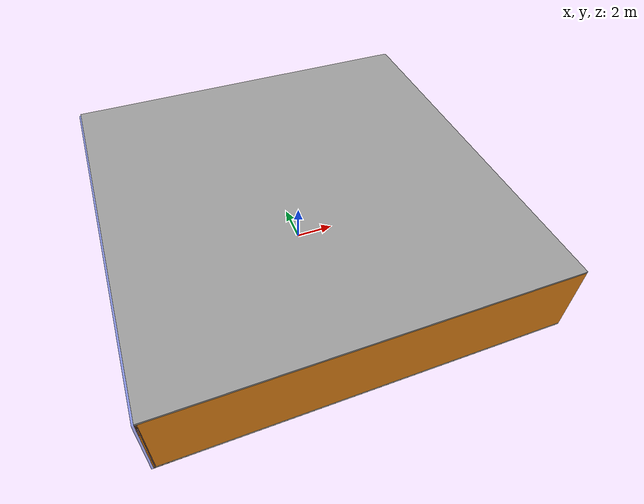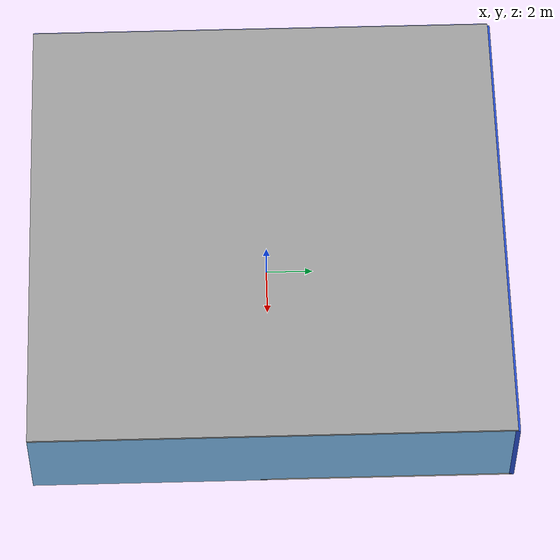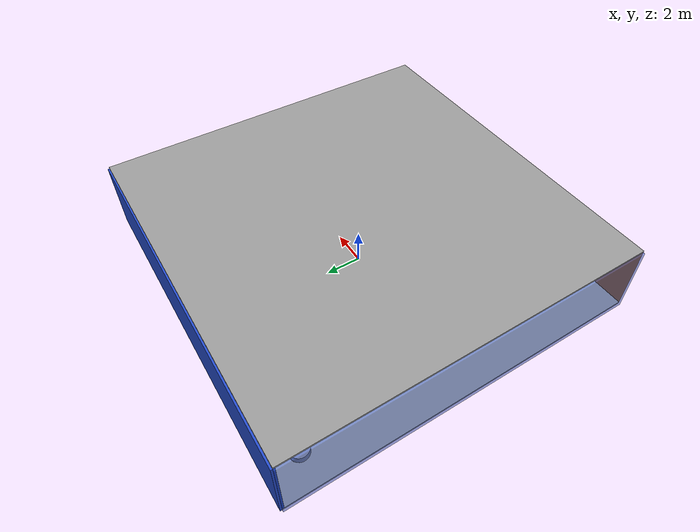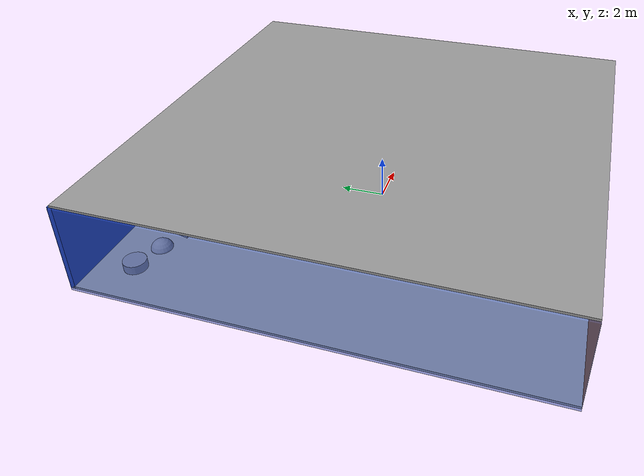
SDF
<sdf version="1.4">
 <world name="default">
  <physics type="ode">
   <max_step_size>0.001</max_step_size>
   <real_time_factor>1</real_time_factor>
   <real_time_update_rate>1000</real_time_update_rate>
   <gravity>0 0 -9.8</gravity>
  </physics>
  <scene><ambient>0.4 0.4 0.4 1</ambient><background>0.7 0.7 0.7 1</background><shadows>1</shadows></scene>
  <model name="Surrounding">
   <static>1</static>
   <link name="Ceiling">
    <collision name="Ceiling_Collision"><geometry><box><size>20 20 0.1</size></box></geometry></collision>
    <visual name="Ceiling_Visual">
     <geometry><box><size>20 20 0.1</size></box></geometry>
     <material>
      <script><uri>file://media/materials/scripts/gazebo.material</uri><name>Gazebo/Grey</name></script>
     </material>
    </visual>
    <pose>0 0 4.05 0 0 0</pose>
   </link>
   <link name="Wall_South">
    <collision name="Wall_South_Collision">
     <geometry><box><size>20 0 4</size></box></geometry>
     <pose>0 0 2 0 -0 0</pose>
    </collision>
    <visual name="Wall_South_Visual">
     <pose>0 0 2 0 -0 0</pose>
     <geometry><box><size>20 0 4</size></box></geometry>
     <material>
      <script><uri>file://media/materials/scripts/gazebo.material</uri><name>Gazebo/Orange</name></script>
     </material>
    </visual>
    <velocity_decay><linear>0</linear><angular>0</angular></velocity_decay>
    <pose>0 -10 0 0 -0 0</pose>
   </link>
   <link name="Wall_East">
    <collision name="Wall_21_Collision">
     <geometry><box><size>20 0 4</size></box></geometry>
     <pose>0 0 2 0 -0 0</pose>
    </collision>
    <visual name="Wall_21_Visual">
     <pose>0 0 2 0 -0 0</pose>
     <geometry><box><size>20 0 4</size></box></geometry>
     <material>
      <script><uri>file://media/materials/scripts/gazebo.material</uri><name>Gazebo/SkyBlue</name></script>
     </material>
    </visual>
    <velocity_decay><linear>0</linear><angular>0</angular></velocity_decay>
    <pose>10 0 0 0 -0 1.5708</pose>
   </link>
   <link name="Wall_North">
    <collision name="Wall_22_Collision">
     <geometry><box><size>20 0.2 4</size></box></geometry>
     <pose>0 0 2 0 -0 0</pose>
    </collision>
    <visual name="Wall_22_Visual">
     <pose>0 0 2 0 -0 0</pose>
     <geometry><box><size>20 0.2 4</size></box></geometry>
     <material>
      <script><uri>file://media/materials/scripts/gazebo.material</uri><name>Gazebo/BlueGlow</name></script>
     </material>
    </visual>
    <velocity_decay><linear>0</linear><angular>0</angular></velocity_decay>
    <pose>0 10 0 0 -0 0</pose>
   </link>
   <link name="Wall_West">
    <collision name="Wall_23_Collision">
     <geometry><box><size>20 0.2 4</size></box></geometry>
     <pose>0 0 2 0 -0 0</pose>
    </collision>
    <visual name="Wall_23_Visual">
     <pose>0 0 2 0 -0 0</pose>
     <geometry><box><size>20 0.2 4</size></box></geometry>
     <material>
      <script><uri>file://media/materials/scripts/gazebo.material</uri><name>Gazebo/BlueTransparent</name></script>
     </material>
    </visual>
    <velocity_decay><linear>0</linear><angular>0</angular></velocity_decay>
    <pose>-10 0 0 0 0 -1.5708</pose>
   </link>
   <link name="Ground_link">
    <collision name="collision">
     <pose>0 0 .05 0 -0 0</pose>
     <geometry><box><size>20 20 0.1</size></box></geometry>
    </collision>
    <visual name="visual">
     <pose>0 0 .05 0 -0 0</pose>
     <geometry><box><size>20 20 0.1</size></box></geometry>
     <material>
      <script><uri>file://media/materials/scripts/gazebo.material</uri><name>Gazebo/PaintedWall</name></script>
     </material>
    </visual>
   </link>
   <static>1</static>
  </model>
  <spherical_coordinates>
   <surface_model>EARTH_WGS84</surface_model>
   <latitude_deg>0</latitude_deg>
   <longitude_deg>0</longitude_deg>
   <elevation>0</elevation>
   <heading_deg>0</heading_deg>
  </spherical_coordinates>
  <light name="lightball_0" type="diffuse">
   <diffuse>0.8 0.8 0.8 1</diffuse>
   <specular>0.2 0.2 0.2 1</specular>
   <attenuation>
    <range>100</range>
    <constant>0.7</constant>
    <linear>0.01</linear>
    <quadratic>0.001</quadratic>
   </attenuation>
   <direction>-0.5 0.1 -0.9</direction>
   <pose>9.12321087013 9.01122889024 2.32828324981 0 0 0</pose>
  </light>
  <light name="lightball_1" type="diffuse">
   <diffuse>0.8 0.8 0.8 1</diffuse>
   <specular>0.2 0.2 0.2 1</specular>
   <attenuation>
    <range>100</range>
    <constant>0.7</constant>
    <linear>0.01</linear>
    <quadratic>0.001</quadratic>
   </attenuation>
   <direction>-0.5 0.1 -0.9</direction>
   <pose>2.99535591178 -4.77343600369 1.99116452215 0 0 0</pose>
  </light>
  <light name="lightball_2" type="diffuse">
   <diffuse>0.8 0.8 0.8 1</diffuse>
   <specular>0.2 0.2 0.2 1</specular>
   <attenuation>
    <range>100</range>
    <constant>0.7</constant>
    <linear>0.01</linear>
    <quadratic>0.001</quadratic>
   </attenuation>
   <direction>-0.5 0.1 -0.9</direction>
   <pose>7.54630827179 -9.90934786523 0.819634624356 0 0 0</pose>
  </light>
  <light name="lightball_3" type="diffuse">
   <diffuse>0.8 0.8 0.8 1</diffuse>
   <specular>0.2 0.2 0.2 1</specular>
   <attenuation>
    <range>100</range>
    <constant>0.7</constant>
    <linear>0.01</linear>
    <quadratic>0.001</quadratic>
   </attenuation>
   <direction>-0.5 0.1 -0.9</direction>
   <pose>5.44207241832 -8.01054902837 2.04833481576 0 0 0</pose>
  </light>
  <light name="lightball_4" type="diffuse">
   <diffuse>0.8 0.8 0.8 1</diffuse>
   <specular>0.2 0.2 0.2 1</specular>
   <attenuation>
    <range>100</range>
    <constant>0.7</constant>
    <linear>0.01</linear>
    <quadratic>0.001</quadratic>
   </attenuation>
   <direction>-0.5 0.1 -0.9</direction>
   <pose>-4.6471140926 -9.76654947081 0.908978463127 0 0 0</pose>
  </light>
  <light name="lightball_5" type="diffuse">
   <diffuse>0.8 0.8 0.8 1</diffuse>
   <specular>0.2 0.2 0.2 1</specular>
   <attenuation>
    <range>100</range>
    <constant>0.7</constant>
    <linear>0.01</linear>
    <quadratic>0.001</quadratic>
   </attenuation>
   <direction>-0.5 0.1 -0.9</direction>
   <pose>7.15901648603 -8.48654265991 2.57618242461 0 0 0</pose>
  </light>
  <light name="lightball_6" type="diffuse">
   <diffuse>0.8 0.8 0.8 1</diffuse>
   <specular>0.2 0.2 0.2 1</specular>
   <attenuation>
    <range>100</range>
    <constant>0.7</constant>
    <linear>0.01</linear>
    <quadratic>0.001</quadratic>
   </attenuation>
   <direction>-0.5 0.1 -0.9</direction>
   <pose>-4.12676702269 -9.09753813734 2.37464675236 0 0 0</pose>
  </light>
  <light name="lightball_7" type="diffuse">
   <diffuse>0.8 0.8 0.8 1</diffuse>
   <specular>0.2 0.2 0.2 1</specular>
   <attenuation>
    <range>100</range>
    <constant>0.7</constant>
    <linear>0.01</linear>
    <quadratic>0.001</quadratic>
   </attenuation>
   <direction>-0.5 0.1 -0.9</direction>
   <pose>3.80223602689 -3.47972625174 2.10962379014 0 0 0</pose>
  </light>
  <light name="lightball_8" type="diffuse">
   <diffuse>0.8 0.8 0.8 1</diffuse>
   <specular>0.2 0.2 0.2 1</specular>
   <attenuation>
    <range>100</range>
    <constant>0.7</constant>
    <linear>0.01</linear>
    <quadratic>0.001</quadratic>
   </attenuation>
   <direction>-0.5 0.1 -0.9</direction>
   <pose>5.84442258457 9.92248282738 1.62687232673 0 0 0</pose>
  </light>
  <light name="lightball_9" type="diffuse">
   <diffuse>0.8 0.8 0.8 1</diffuse>
   <specular>0.2 0.2 0.2 1</specular>
   <attenuation>
    <range>100</range>
    <constant>0.7</constant>
    <linear>0.01</linear>
    <quadratic>0.001</quadratic>
   </attenuation>
   <direction>-0.5 0.1 -0.9</direction>
   <pose>5.14282222742 1.88107810968 2.58348040316 0 0 0</pose>
  </light>
  <light name="lightball_10" type="diffuse">
   <diffuse>0.8 0.8 0.8 1</diffuse>
   <specular>0.2 0.2 0.2 1</specular>
   <attenuation>
    <range>100</range>
    <constant>0.7</constant>
    <linear>0.01</linear>
    <quadratic>0.001</quadratic>
   </attenuation>
   <direction>-0.5 0.1 -0.9</direction>
   <pose>-8.22794304988 4.1558144846 2.35930576289 0 0 0</pose>
  </light>
  <include>
   <uri>model://textured_shapes</uri>
   <pose>-6.76412130281 7.90273199202 0 0 0 1.35111423627</pose>
  </include>
  <include>
   <uri>model://construction_cone</uri>
   <pose>-4.53610511396 7.4381127546 0 0 0 1.76412368023</pose>
  </include>
  <include><uri>model://table</uri><pose>-1.89167753271 -4.72819048443 0 0 0 1.7856219865</pose></include>
  <include>
   <uri>model://textured_shapes</uri>
   <pose>0.954423248123 -1.39913489512 0 0 0 0.666876816635</pose>
  </include>
  <include><uri>model://cabinet</uri><pose>1.12519450302 1.97707495656 0 0 0 2.16831656551</pose></include>
  <include><uri>model://cabinet</uri><pose>0.777539934921 3.76083635334 0 0 0 1.20694070345</pose></include>
  <include><uri>model://table</uri><pose>2.28365855567 7.02035957676 0 0 0 2.87419559427</pose></include>
  <include>
   <uri>model://construction_cone</uri>
   <pose>4.04223736223 -4.19925916445 0 0 0 2.59114048824</pose>
  </include>
  <include><uri>model://cabinet</uri><pose>4.49550397799 -1.64740529593 0 0 0 0.294170839005</pose></include>
  <include>
   <uri>model://robocup_3Dsim_goal</uri>
   <pose>4.65201793415 2.28568141625 0 0 0 2.15629506159</pose>
  </include>
  <include>
   <uri>model://textured_shapes</uri>
   <pose>6.70269472702 -1.39444231814 0 0 0 1.81389034218</pose>
  </include>
 </world>
</sdf>

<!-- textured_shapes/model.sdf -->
<sdf version="1.6">
  <model name="textured_shapes">
    <pose>0 0 0.5 0 0 0</pose>
    <link name="box">
      <pose>0 -1.5 0 0 0 0</pose>
      <collision name="collision">
        <geometry>
          <box>
            <size>1 1 1</size>
          </box>
        </geometry>
      </collision>
      <visual name="visual">
        <geometry>
          <box>
            <size>1 1 1</size>
          </box>
        </geometry>
        <material>
          <script>
            <uri>model://../model_source/models/textured_shapes/materials/scripts</uri>
            <uri>model://../model_source/models/textured_shapes/materials/textures</uri>
            <name>TexturedShape/Squares</name>
          </script>
        </material>
      </visual>
    </link>
    <link name="sphere">
      <collision name="collision">
        <geometry>
          <sphere>
            <radius>0.5</radius>
          </sphere>
        </geometry>
      </collision>
      <visual name="visual">
        <geometry>
          <sphere>
            <radius>0.5</radius>
          </sphere>
        </geometry>
        <material>
          <script>
            <uri>model://../model_source/models/textured_shapes/materials/scripts</uri>
            <uri>model://../model_source/models/textured_shapes/materials/textures</uri>
            <name>TexturedShape/Squares</name>
          </script>
        </material>
      </visual>
    </link>
    <link name="cylinder">
      <pose>0 1.5 0 0 0 0</pose>
      <collision name="collision">
        <geometry>
          <cylinder>
            <radius>0.5</radius>
            <length>1</length>
          </cylinder>
        </geometry>
      </collision>
      <visual name="visual">
        <geometry>
          <cylinder>
            <radius>0.5</radius>
            <length>1</length>
          </cylinder>
        </geometry>
        <material>
          <script>
            <uri>model://../model_source/models/textured_shapes/materials/scripts</uri>
            <uri>model://../model_source/models/textured_shapes/materials/textures</uri>
            <name>TexturedShape/Squares</name>
          </script>
        </material>
      </visual>
    </link>
  </model>
</sdf>

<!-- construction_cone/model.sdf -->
<sdf version="1.5">
  <model name="Construction Cone">
    <link name="link">
      <collision name="collision">
        <geometry>
          <mesh>
            <scale>10 10 10</scale>
            <uri>file://isr-testbed/construction_cone/meshes/construction_cone.dae</uri>
          </mesh>
        </geometry>
      </collision>
      <visual name="visual">
        <geometry>
          <mesh>
            <scale>10 10 10</scale>
            <uri>file://isr-testbed/construction_cone/meshes/construction_cone.dae</uri>
          </mesh>
        </geometry>
      </visual>
    </link>
  </model>
</sdf>

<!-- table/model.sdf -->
<sdf version="1.5">
  <model name="table">
    <static>true</static>
    <link name="link">
      <collision name="surface">
        <pose>0 0 1.0 0 0 0</pose>
        <geometry>
          <box>
            <size>1.5 0.8 0.03</size>
          </box>
        </geometry>
        <surface>
          <friction>
            <ode>
              <mu>0.6</mu>
              <mu2>0.6</mu2>
            </ode>
          </friction>
        </surface>
      </collision>
      <visual name="visual1">
        <pose>0 0 1.0 0 0 0</pose>
        <geometry>
          <box>
            <size>1.5 0.8 0.03</size>
          </box>
        </geometry>
        <material>
          <script>
            <uri>model://media/materials/scripts/gazebo.material</uri>
            <name>Gazebo/Wood</name>
          </script>
        </material>
      </visual>
      <collision name="front_left_leg">
        <pose>0.68 0.38 0.5 0 0 0</pose>
        <geometry>
          <cylinder>
            <radius>0.02</radius>
            <length>1.0</length>
          </cylinder>
        </geometry>
      </collision>
      <visual name="front_left_leg">
        <pose>0.68 0.38 0.5 0 0 0</pose>
        <geometry>
          <cylinder>
            <radius>0.02</radius>
            <length>1.0</length>
          </cylinder>
        </geometry>
        <material>
          <script>
            <uri>model://media/materials/scripts/gazebo.material</uri>
            <name>Gazebo/Grey</name>
          </script>
        </material>
      </visual>
      <collision name="front_right_leg">
        <pose>0.68 -0.38 0.5 0 0 0</pose>
        <geometry>
          <cylinder>
            <radius>0.02</radius>
            <length>1.0</length>
          </cylinder>
        </geometry>
      </collision>
      <visual name="front_right_leg">
        <pose>0.68 -0.38 0.5 0 0 0</pose>
        <geometry>
          <cylinder>
            <radius>0.02</radius>
            <length>1.0</length>
          </cylinder>
        </geometry>
        <material>
          <script>
            <uri>model://media/materials/scripts/gazebo.material</uri>
            <name>Gazebo/Grey</name>
          </script>
        </material>
      </visual>
      <collision name="back_right_leg">
        <pose>-0.68 -0.38 0.5 0 0 0</pose>
        <geometry>
          <cylinder>
            <radius>0.02</radius>
            <length>1.0</length>
          </cylinder>
        </geometry>
      </collision>
      <visual name="back_right_leg">
        <pose>-0.68 -0.38 0.5 0 0 0</pose>
        <geometry>
          <cylinder>
            <radius>0.02</radius>
            <length>1.0</length>
          </cylinder>
        </geometry>
        <material>
          <script>
            <uri>model://media/materials/scripts/gazebo.material</uri>
            <name>Gazebo/Grey</name>
          </script>
        </material>
      </visual>
      <collision name="back_left_leg">
        <pose>-0.68 0.38 0.5 0 0 0</pose>
        <geometry>
          <cylinder>
            <radius>0.02</radius>
            <length>1.0</length>
          </cylinder>
        </geometry>
      </collision>
      <visual name="back_left_leg">
        <pose>-0.68 0.38 0.5 0 0 0</pose>
        <geometry>
          <cylinder>
            <radius>0.02</radius>
            <length>1.0</length>
          </cylinder>
        </geometry>
        <material>
          <script>
            <uri>model://media/materials/scripts/gazebo.material</uri>
            <name>Gazebo/Grey</name>
          </script>
        </material>
      </visual>
    </link>
  </model>
</sdf>

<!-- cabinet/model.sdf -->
<sdf version="1.5">
  <model name="cabinet">
    <static>true</static>
    <link name="cabinet_bottom_plate">
      <inertial>
        <pose>0 0 -1 0 0 0</pose>
        <inertia>
          <ixx>2.050000</ixx>
          <ixy>0</ixy>
          <ixz>0</ixz>
          <iyy>2.050000</iyy>
          <iyz>0</iyz>
          <izz>2.050000</izz>
        </inertia>
        <mass>25.000000</mass>
      </inertial>
      <collision name="cabinet_bottom_plate_geom">
        <pose>0 0 0.010000 0 0 0</pose>
        <geometry>
          <box>
            <size>0.450000 0.450000 0.020000</size>
          </box>
        </geometry>
      </collision>
      <visual name="cabinet_bottom_plate_geom_visual">
        <pose>0 0 0.010000 0 0 0</pose>
        <geometry>
          <box>
            <size>0.450000 0.450000 0.020000</size>
          </box>
        </geometry>
        <material>
          <script>
            <uri>model://media/materials/scripts/gazebo.material</uri>
            <name>Gazebo/Wood</name>
          </script>
        </material>
      </visual>
      <collision name="cabinet_bottom_plate_geom_cabinet_back_plate">
        <pose>0.235000 0 0.510000 0 0 0</pose>
        <geometry>
          <box>
            <size>0.020000 0.450000 1.020000</size>
          </box>
        </geometry>
      </collision>
      <visual name="cabinet_bottom_plate_geom_cabinet_back_plate_visual">
        <pose>0.235000 0 0.510000 0 0 0</pose>
        <geometry>
          <box>
            <size>0.020000 0.450000 1.020000</size>
          </box>
        </geometry>
        <material>
          <script>
            <uri>model://media/materials/scripts/gazebo.material</uri>
            <name>Gazebo/Wood</name>
          </script>
        </material>
      </visual>
      <collision name="cabinet_bottom_plate_geom_cabinet_left_plate">
        <pose>0 0.235000 0.510000 0 0 0</pose>
        <geometry>
          <box>
            <size>0.450000 0.020000 1.020000</size>
          </box>
        </geometry>
      </collision>
      <visual name="cabinet_bottom_plate_geom_cabinet_left_plate_visual">
        <pose>0 0.235000 0.510000 0 0 0</pose>
        <geometry>
          <box>
            <size>0.450000 0.020000 1.020000</size>
          </box>
        </geometry>
        <material>
          <script>
            <uri>model://media/materials/scripts/gazebo.material</uri>
            <name>Gazebo/Wood</name>
          </script>
        </material>
      </visual>
      <collision name="cabinet_bottom_plate_geom_cabinet_middle_plate">
        <pose>0 0 0.510000 0 0 0</pose>
        <geometry>
          <box>
            <size>0.450000 0.450000 0.020000</size>
          </box>
        </geometry>
      </collision>
      <visual name="cabinet_bottom_plate_geom_cabinet_middle_plate_visual">
        <pose>0 0 0.510000 0 0 0</pose>
        <geometry>
          <box>
            <size>0.450000 0.450000 0.020000</size>
          </box>
        </geometry>
        <material>
          <script>
            <uri>model://media/materials/scripts/gazebo.material</uri>
            <name>Gazebo/Wood</name>
          </script>
        </material>
      </visual>
      <collision name="cabinet_bottom_plate_geom_cabinet_right_plate">
        <pose>0 -0.235000 0.510000 0 0 0</pose>
        <geometry>
          <box>
            <size>0.450000 0.020000 1.020000</size>
          </box>
        </geometry>
      </collision>
      <visual name="cabinet_bottom_plate_geom_cabinet_right_plate_visual">
        <pose>0 -0.235000 0.510000 0 0 0</pose>
        <geometry>
          <box>
            <size>0.450000 0.020000 1.020000</size>
          </box>
        </geometry>
        <material>
          <script>
            <uri>model://media/materials/scripts/gazebo.material</uri>
            <name>Gazebo/Wood</name>
          </script>
        </material>
      </visual>
      <collision name="cabinet_bottom_plate_geom_cabinet_top_plate">
        <pose>0 0 1.010000 0 0 0</pose>
        <geometry>
          <box>
            <size>0.450000 0.450000 0.020000</size>
          </box>
        </geometry>
      </collision>
      <visual name="cabinet_bottom_plate_geom_cabinet_top_plate_visual">
        <pose>0 0 1.010000 0 0 0</pose>
        <geometry>
          <box>
            <size>0.450000 0.450000 0.020000</size>
          </box>
        </geometry>
        <material>
          <script>
            <uri>model://media/materials/scripts/gazebo.material</uri>
            <name>Gazebo/Wood</name>
          </script>
        </material>
      </visual>
    </link>
  </model>
</sdf>

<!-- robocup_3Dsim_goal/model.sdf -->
<sdf version="1.5">
  <model name="robocup_3d_goal">
    <static>true</static>
    <link name="left_post">
      <pose>0 1.05 0.45 0 0 0</pose>
      <collision name="collision">
        <geometry>
          <cylinder>
            <radius>0.05</radius>
            <length>0.9</length>
          </cylinder>
        </geometry>
      </collision>
      <visual name="visual">
        <geometry>
          <cylinder>
            <radius>0.05</radius>
            <length>0.9</length>
          </cylinder>
        </geometry>
        <material>
          <script>
            <uri>file://media/materials/scripts/gazebo.material</uri>
            <name>Gazebo/ZincYellow</name>
          </script>
        </material>
      </visual>
    </link>
    <link name="left_support_horiz_lower">
      <pose>0.30 1.05 0.01 0 0 0</pose>
      <collision name="collision">
        <geometry>
          <box>
            <size>0.50 0.02 0.02</size>
          </box>
        </geometry>
      </collision>
      <visual name="visual">
        <geometry>
          <box>
            <size>0.50 0.02 0.02</size>
          </box>
        </geometry>
        <material>
          <script>
            <uri>file://media/materials/scripts/gazebo.material</uri>
            <name>Gazebo/White</name>
          </script>
        </material>
      </visual>
    </link>
    <link name="left_support_horiz_upper">
      <pose>0.30 1.05 0.79 0 0 0</pose>
      <collision name="collision">
        <geometry>
          <box>
            <size>0.50 0.02 0.02</size>
          </box>
        </geometry>
      </collision>
      <visual name="visual">
        <geometry>
          <box>
            <size>0.50 0.02 0.02</size>
          </box>
        </geometry>
        <material>
          <script>
            <uri>file://media/materials/scripts/gazebo.material</uri>
            <name>Gazebo/White</name>
          </script>
        </material>
      </visual>
    </link>
    <link name="left_support_vertical">
      <pose>0.56 1.05 0.4 0 1.5708 0</pose>
      <collision name="collision">
        <geometry>
          <box>
            <size>0.80 0.02 0.02</size>
          </box>
        </geometry>
      </collision>
      <visual name="visual">
        <geometry>
          <box>
            <size>0.80 0.02 0.02</size>
          </box>
        </geometry>
        <material>
          <script>
            <uri>file://media/materials/scripts/gazebo.material</uri>
            <name>Gazebo/White</name>
          </script>
        </material>
      </visual>
    </link>
    <link name="right_support_horiz_lower">
      <pose>0.30 -1.05 0.01 0 0 0</pose>
      <collision name="collision">
        <geometry>
          <box>
            <size>0.50 0.02 0.02</size>
          </box>
        </geometry>
      </collision>
      <visual name="visual">
        <geometry>
          <box>
            <size>0.50 0.02 0.02</size>
          </box>
        </geometry>
        <material>
          <script>
            <uri>file://media/materials/scripts/gazebo.material</uri>
            <name>Gazebo/White</name>
          </script>
        </material>
      </visual>
    </link>
    <link name="right_support_horiz_upper">
      <pose>0.30 -1.05 0.79 0 0 0</pose>
      <collision name="collision">
        <geometry>
          <box>
            <size>0.50 0.02 0.02</size>
          </box>
        </geometry>
      </collision>
      <visual name="visual">
        <geometry>
          <box>
            <size>0.50 0.02 0.02</size>
          </box>
        </geometry>
        <material>
          <script>
            <uri>file://media/materials/scripts/gazebo.material</uri>
            <name>Gazebo/White</name>
          </script>
        </material>
      </visual>
    </link>
    <link name="right_support_vertical">
      <pose>0.56 -1.05 0.4 0 1.5708 0</pose>
      <collision name="collision">
        <geometry>
          <box>
            <size>0.80 0.02 0.02</size>
          </box>
        </geometry>
      </collision>
      <visual name="visual">
        <geometry>
          <box>
            <size>0.80 0.02 0.02</size>
          </box>
        </geometry>
        <material>
          <script>
            <uri>file://media/materials/scripts/gazebo.material</uri>
            <name>Gazebo/White</name>
          </script>
        </material>
      </visual>
    </link>
    <link name="center_support_horiz_lower">
      <pose>0.56 0 0.01 0 1.5708 0</pose>
      <collision name="collision">
        <geometry>
          <box>
            <size>0.02 2.08 0.02</size>
          </box>
        </geometry>
      </collision>
      <visual name="visual">
        <geometry>
          <box>
            <size>0.02 2.08 0.02</size>
          </box>
        </geometry>
        <material>
          <script>
            <uri>file://media/materials/scripts/gazebo.material</uri>
            <name>Gazebo/White</name>
          </script>
        </material>
      </visual>
    </link>
    <link name="center_support_horiz_upper">
      <pose>0.56 0 0.79 0 1.5708 0</pose>
      <collision name="collision">
        <geometry>
          <box>
            <size>0.02 2.08 0.02</size>
          </box>
        </geometry>
      </collision>
      <visual name="visual">
        <geometry>
          <box>
            <size>0.02 2.08 0.02</size>
          </box>
        </geometry>
        <material>
          <script>
            <uri>file://media/materials/scripts/gazebo.material</uri>
            <name>Gazebo/White</name>
          </script>
        </material>
      </visual>
    </link>
    <link name="right_post">
      <pose>0 -1.05 0.45 0 0 0</pose>
      <collision name="collision">
        <geometry>
          <cylinder>
            <radius>0.05</radius>
            <length>0.9</length>
          </cylinder>
        </geometry>
      </collision>
      <visual name="visual">
        <geometry>
          <cylinder>
            <radius>0.05</radius>
            <length>0.9</length>
          </cylinder>
        </geometry>
        <material>
          <script>
            <uri>file://media/materials/scripts/gazebo.material</uri>
            <name>Gazebo/ZincYellow</name>
          </script>
        </material>
      </visual>
    </link>
    <link name="crossbar">
      <pose>0 0 0.85 1.57 1.57 0</pose>
      <collision name="collision">
        <geometry>
          <cylinder>
            <radius>0.05</radius>
            <length>2.0</length>
          </cylinder>
        </geometry>
      </collision>
      <visual name="visual">
        <geometry>
          <cylinder>
            <radius>0.05</radius>
            <length>2.0</length>
          </cylinder>
        </geometry>
        <material>
          <script>
            <uri>file://media/materials/scripts/gazebo.material</uri>
            <name>Gazebo/ZincYellow</name>
          </script>
        </material>
      </visual>
    </link>
    <link name="center_net">
      <pose>0.56 0 0.40 0 0 0</pose>
      <collision name="collision">
        <geometry>
          <box>
            <size>0.01 2.1 0.80</size>
          </box>
        </geometry>
      </collision>
      <visual name="visual">
        <geometry>
          <box>
            <size>0.01 2.1 0.80</size>
          </box>
        </geometry>
        <material>
          <script>
            <uri>model://../model_source/models/robocup09_spl_field/materials/scripts/</uri>
            <uri>model://../model_source/models/robocup09_spl_field/materials/textures/</uri>
            <name>RoboCup/Net</name>
          </script>
        </material>
      </visual>
    </link>
    <link name="left_net">
      <pose>0.30 1.05 0.40 0 0 0</pose>
      <collision name="collision">
        <geometry>
          <box>
            <size>0.50 0.01 0.76</size>
          </box>
        </geometry>
      </collision>
      <visual name="visual">
        <geometry>
          <box>
            <size>0.50 0.01 0.76</size>
          </box>
        </geometry>
        <material>
          <script>
            <uri>model://../model_source/models/robocup09_spl_field/materials/scripts/</uri>
            <uri>model://../model_source/models/robocup09_spl_field/materials/textures/</uri>
            <name>RoboCup/Net</name>
          </script>
        </material>
      </visual>
    </link>
    <link name="right_net">
      <pose>0.30 -1.05 0.40 0 0 0</pose>
      <collision name="collision">
        <geometry>
          <box>
            <size>0.50 0.01 0.76</size>
          </box>
        </geometry>
      </collision>
      <visual name="visual">
        <geometry>
          <box>
            <size>0.50 0.01 0.76</size>
          </box>
        </geometry>
        <material>
          <script>
            <uri>model://../model_source/models/robocup09_spl_field/materials/scripts/</uri>
            <uri>model://../model_source/models/robocup09_spl_field/materials/textures/</uri>
            <name>RoboCup/Net</name>
          </script>
        </material>
      </visual>
    </link>
  </model>
</sdf>
